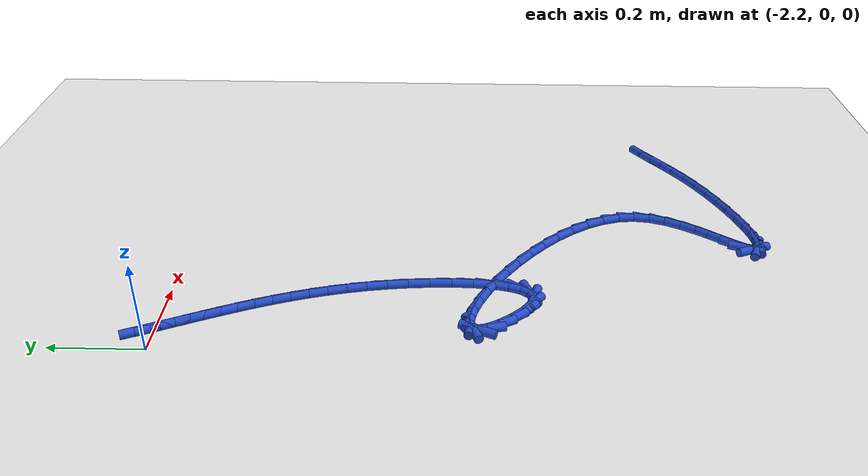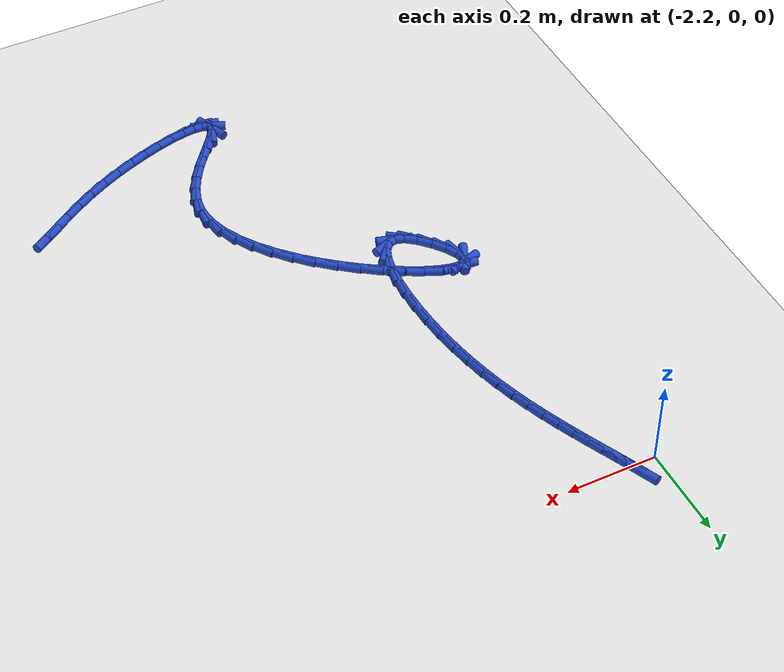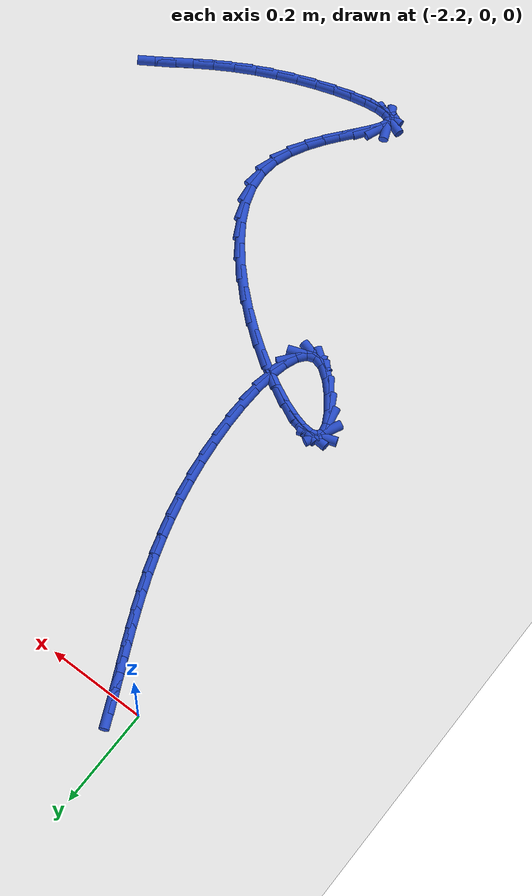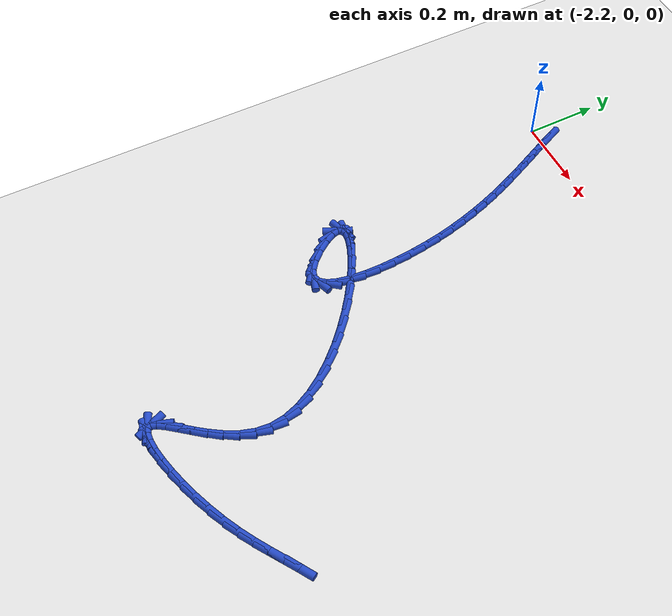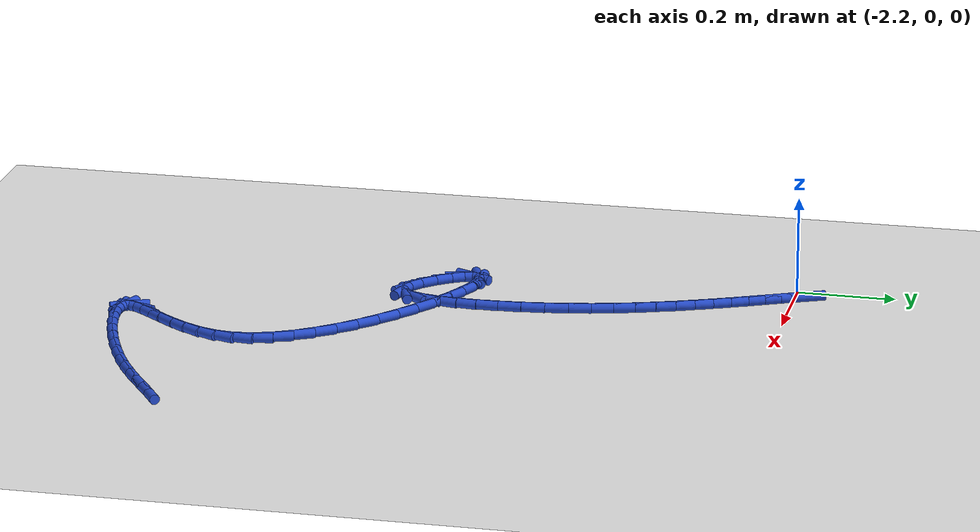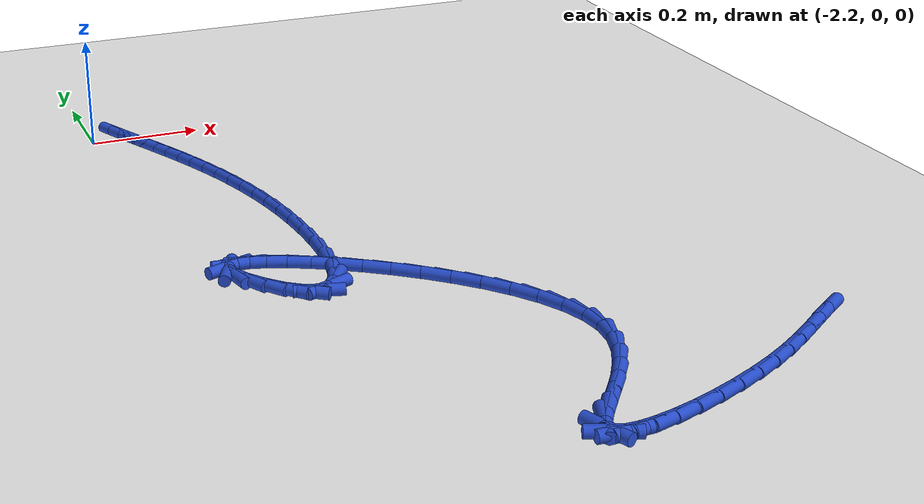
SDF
<sdf version="1.6">
 <world name="default">
  <model name="ground_plane">
   <static>1</static>
   <link name="link">
    <collision name="collision">
     <geometry><plane><normal>0 0 1</normal><size>100 100</size></plane></geometry>
     <surface><friction><ode><mu>100</mu><mu2>50</mu2></ode></friction></surface>
    </collision>
    <visual name="visual">
     <cast_shadows>0</cast_shadows>
     <geometry><plane><normal>0 0 1</normal><size>100 100</size></plane></geometry>
     <material>
      <script><uri>file://media/materials/scripts/gazebo.material</uri><name>Gazebo/WhiteGlow</name></script>
     </material>
    </visual>
   </link>
  </model>
  <model name="line">
   <link name="link_143">
    <pose>-2.152068193592259 0.02436269255250722 0.01 0 1.57 -1.1484810610256622</pose>
    <collision name="collision">
     <geometry><cylinder><radius>0.01</radius><length>0.08</length></cylinder></geometry>
    </collision>
    <visual name="visual">
     <material>
      <script><name>Gazebo/Blue</name><uri>file://media/materials/scripts/gazebo.material</uri></script>
     </material>
     <geometry><cylinder><radius>0.01</radius><length>0.08</length></cylinder></geometry>
    </visual>
   </link>
   <link name="link_144">
    <pose>-2.1398056084441 -0.002926768150948951 0.01 0 1.57 -1.136471778639956</pose>
    <collision name="collision">
     <geometry><cylinder><radius>0.01</radius><length>0.08</length></cylinder></geometry>
    </collision>
    <visual name="visual">
     <material>
      <script><name>Gazebo/Blue</name><uri>file://media/materials/scripts/gazebo.material</uri></script>
     </material>
     <geometry><cylinder><radius>0.01</radius><length>0.08</length></cylinder></geometry>
    </visual>
   </link>
   <link name="link_145">
    <pose>-2.1267307143251473 -0.03111358358671991 0.01 0 1.57 -1.1319063735678736</pose>
    <collision name="collision">
     <geometry><cylinder><radius>0.01</radius><length>0.08</length></cylinder></geometry>
    </collision>
    <visual name="visual">
     <material>
      <script><name>Gazebo/Blue</name><uri>file://media/materials/scripts/gazebo.material</uri></script>
     </material>
     <geometry><cylinder><radius>0.01</radius><length>0.08</length></cylinder></geometry>
    </visual>
   </link>
   <link name="link_146">
    <pose>-2.1130412014923126 -0.060275873741788416 0.01 0 1.57 -1.1340144063076438</pose>
    <collision name="collision">
     <geometry><cylinder><radius>0.01</radius><length>0.08</length></cylinder></geometry>
    </collision>
    <visual name="visual">
     <material>
      <script><name>Gazebo/Blue</name><uri>file://media/materials/scripts/gazebo.material</uri></script>
     </material>
     <geometry><cylinder><radius>0.01</radius><length>0.08</length></cylinder></geometry>
    </visual>
   </link>
   <link name="link_147">
    <pose>-2.0989347602025075 -0.09049175860313437 0.01 0 1.57 -1.1421410478172946</pose>
    <collision name="collision">
     <geometry><cylinder><radius>0.01</radius><length>0.08</length></cylinder></geometry>
    </collision>
    <visual name="visual">
     <material>
      <script><name>Gazebo/Blue</name><uri>file://media/materials/scripts/gazebo.material</uri></script>
     </material>
     <geometry><cylinder><radius>0.01</radius><length>0.08</length></cylinder></geometry>
    </visual>
   </link>
   <link name="link_148">
    <pose>-2.0846090807126436 -0.12183935815774045 0.01 0 1.57 -1.1557245886575047</pose>
    <collision name="collision">
     <geometry><cylinder><radius>0.01</radius><length>0.08</length></cylinder></geometry>
    </collision>
    <visual name="visual">
     <material>
      <script><name>Gazebo/Blue</name><uri>file://media/materials/scripts/gazebo.material</uri></script>
     </material>
     <geometry><cylinder><radius>0.01</radius><length>0.08</length></cylinder></geometry>
    </visual>
   </link>
   <link name="link_149">
    <pose>-2.070261853279632 -0.15439679239258847 0.01 0 1.57 -1.1742733917183918</pose>
    <collision name="collision">
     <geometry><cylinder><radius>0.01</radius><length>0.08</length></cylinder></geometry>
    </collision>
    <visual name="visual">
     <material>
      <script><name>Gazebo/Blue</name><uri>file://media/materials/scripts/gazebo.material</uri></script>
     </material>
     <geometry><cylinder><radius>0.01</radius><length>0.08</length></cylinder></geometry>
    </visual>
   </link>
   <link name="link_150">
    <pose>-2.0560907681603844 -0.18824218129466014 0.01 0 1.57 -1.197344345354905</pose>
    <collision name="collision">
     <geometry><cylinder><radius>0.01</radius><length>0.08</length></cylinder></geometry>
    </collision>
    <visual name="visual">
     <material>
      <script><name>Gazebo/Blue</name><uri>file://media/materials/scripts/gazebo.material</uri></script>
     </material>
     <geometry><cylinder><radius>0.01</radius><length>0.08</length></cylinder></geometry>
    </visual>
   </link>
   <link name="link_151">
    <pose>-2.042293515611812 -0.2234536448509373 0.01 0 1.57 -1.2245238226908646</pose>
    <collision name="collision">
     <geometry><cylinder><radius>0.01</radius><length>0.08</length></cylinder></geometry>
    </collision>
    <visual name="visual">
     <material>
      <script><name>Gazebo/Blue</name><uri>file://media/materials/scripts/gazebo.material</uri></script>
     </material>
     <geometry><cylinder><radius>0.01</radius><length>0.08</length></cylinder></geometry>
    </visual>
   </link>
   <link name="link_152">
    <pose>-2.0290677858908244 -0.26010930304840163 0.01 0 1.57 -1.2554117006270815</pose>
    <collision name="collision">
     <geometry><cylinder><radius>0.01</radius><length>0.08</length></cylinder></geometry>
    </collision>
    <visual name="visual">
     <material>
      <script><name>Gazebo/Blue</name><uri>file://media/materials/scripts/gazebo.material</uri></script>
     </material>
     <geometry><cylinder><radius>0.01</radius><length>0.08</length></cylinder></geometry>
    </visual>
   </link>
   <link name="link_153">
    <pose>-2.0166112692543354 -0.2982872758740349 0.01 0 1.57 -1.2896088287802219</pose>
    <collision name="collision">
     <geometry><cylinder><radius>0.01</radius><length>0.08</length></cylinder></geometry>
    </collision>
    <visual name="visual">
     <material>
      <script><name>Gazebo/Blue</name><uri>file://media/materials/scripts/gazebo.material</uri></script>
     </material>
     <geometry><cylinder><radius>0.01</radius><length>0.08</length></cylinder></geometry>
    </visual>
   </link>
   <link name="link_154">
    <pose>-2.005121655959255 -0.33806568331481895 0.01 0 1.57 -1.3267082720146268</pose>
    <collision name="collision">
     <geometry><cylinder><radius>0.01</radius><length>0.08</length></cylinder></geometry>
    </collision>
    <visual name="visual">
     <material>
      <script><name>Gazebo/Blue</name><uri>file://media/materials/scripts/gazebo.material</uri></script>
     </material>
     <geometry><cylinder><radius>0.01</radius><length>0.08</length></cylinder></geometry>
    </visual>
   </link>
   <link name="link_155">
    <pose>-1.9947966362624951 -0.37952264535773694 0.01 0 1.57 -1.3662905635150218</pose>
    <collision name="collision">
     <geometry><cylinder><radius>0.01</radius><length>0.08</length></cylinder></geometry>
    </collision>
    <visual name="visual">
     <material>
      <script><name>Gazebo/Blue</name><uri>file://media/materials/scripts/gazebo.material</uri></script>
     </material>
     <geometry><cylinder><radius>0.01</radius><length>0.08</length></cylinder></geometry>
    </visual>
   </link>
   <link name="link_156">
    <pose>-1.9858339004209666 -0.4227362819897678 0.01 0 1.57 -1.4079230360385369</pose>
    <collision name="collision">
     <geometry><cylinder><radius>0.01</radius><length>0.08</length></cylinder></geometry>
    </collision>
    <visual name="visual">
     <material>
      <script><name>Gazebo/Blue</name><uri>file://media/materials/scripts/gazebo.material</uri></script>
     </material>
     <geometry><cylinder><radius>0.01</radius><length>0.08</length></cylinder></geometry>
    </visual>
   </link>
   <link name="link_157">
    <pose>-1.9784311386915816 -0.4677847131978949 0.01 0 1.57 -1.4508976898528412</pose>
    <collision name="collision">
     <geometry><cylinder><radius>0.01</radius><length>0.08</length></cylinder></geometry>
    </collision>
    <visual name="visual">
     <material>
      <script><name>Gazebo/Blue</name><uri>file://media/materials/scripts/gazebo.material</uri></script>
     </material>
     <geometry><cylinder><radius>0.01</radius><length>0.08</length></cylinder></geometry>
    </visual>
   </link>
   <link name="link_158">
    <pose>-1.9727901102471401 -0.5146073580040293 0.01 0 1.57 -1.494130232786527</pose>
    <collision name="collision">
     <geometry><cylinder><radius>0.01</radius><length>0.08</length></cylinder></geometry>
    </collision>
    <visual name="visual">
     <material>
      <script><name>Gazebo/Blue</name><uri>file://media/materials/scripts/gazebo.material</uri></script>
     </material>
     <geometry><cylinder><radius>0.01</radius><length>0.08</length></cylinder></geometry>
    </visual>
   </link>
   <link name="link_159">
    <pose>-1.9691439970525064 -0.5620724971458396 0.01 0 1.57 -1.540610354270172</pose>
    <collision name="collision">
     <geometry><cylinder><radius>0.01</radius><length>0.08</length></cylinder></geometry>
    </collision>
    <visual name="visual">
     <material>
      <script><name>Gazebo/Blue</name><uri>file://media/materials/scripts/gazebo.material</uri></script>
     </material>
     <geometry><cylinder><radius>0.01</radius><length>0.08</length></cylinder></geometry>
    </visual>
   </link>
   <link name="link_160">
    <pose>-1.9677406114310358 -0.608549692562922 0.01 0 1.57 1.5460103826400278</pose>
    <collision name="collision">
     <geometry><cylinder><radius>0.01</radius><length>0.08</length></cylinder></geometry>
    </collision>
    <visual name="visual">
     <material>
      <script><name>Gazebo/Blue</name><uri>file://media/materials/scripts/gazebo.material</uri></script>
     </material>
     <geometry><cylinder><radius>0.01</radius><length>0.08</length></cylinder></geometry>
    </visual>
   </link>
   <link name="link_161">
    <pose>-1.9688278472739495 -0.6524057257141858 0.01 0 1.57 1.4744893380924577</pose>
    <collision name="collision">
     <geometry><cylinder><radius>0.01</radius><length>0.08</length></cylinder></geometry>
    </collision>
    <visual name="visual">
     <material>
      <script><name>Gazebo/Blue</name><uri>file://media/materials/scripts/gazebo.material</uri></script>
     </material>
     <geometry><cylinder><radius>0.01</radius><length>0.08</length></cylinder></geometry>
    </visual>
   </link>
   <link name="link_162">
    <pose>-1.9726535984724702 -0.6920073780585411 0.01 0 1.57 1.371423665888606</pose>
    <collision name="collision">
     <geometry><cylinder><radius>0.01</radius><length>0.08</length></cylinder></geometry>
    </collision>
    <visual name="visual">
     <material>
      <script><name>Gazebo/Blue</name><uri>file://media/materials/scripts/gazebo.material</uri></script>
     </material>
     <geometry><cylinder><radius>0.01</radius><length>0.08</length></cylinder></geometry>
    </visual>
   </link>
   <link name="link_163">
    <pose>-1.9794657589178204 -0.7257214310548981 0.01 0 1.57 1.2045493107947702</pose>
    <collision name="collision">
     <geometry><cylinder><radius>0.01</radius><length>0.08</length></cylinder></geometry>
    </collision>
    <visual name="visual">
     <material>
      <script><name>Gazebo/Blue</name><uri>file://media/materials/scripts/gazebo.material</uri></script>
     </material>
     <geometry><cylinder><radius>0.01</radius><length>0.08</length></cylinder></geometry>
    </visual>
   </link>
   <link name="link_164">
    <pose>-1.9895122225012218 -0.751914666162167 0.01 0 1.57 0.8997413150564889</pose>
    <collision name="collision">
     <geometry><cylinder><radius>0.01</radius><length>0.08</length></cylinder></geometry>
    </collision>
    <visual name="visual">
     <material>
      <script><name>Gazebo/Blue</name><uri>file://media/materials/scripts/gazebo.material</uri></script>
     </material>
     <geometry><cylinder><radius>0.01</radius><length>0.08</length></cylinder></geometry>
    </visual>
   </link>
   <link name="link_165">
    <pose>-2.0030408831138966 -0.768953864839256 0.01 0 1.57 0.3475440067153012</pose>
    <collision name="collision">
     <geometry><cylinder><radius>0.01</radius><length>0.08</length></cylinder></geometry>
    </collision>
    <visual name="visual">
     <material>
      <script><name>Gazebo/Blue</name><uri>file://media/materials/scripts/gazebo.material</uri></script>
     </material>
     <geometry><cylinder><radius>0.01</radius><length>0.08</length></cylinder></geometry>
    </visual>
   </link>
   <link name="link_166">
    <pose>-2.0202996346470674 -0.7752058085450766 0.01 0 1.57 -0.28215153652158537</pose>
    <collision name="collision">
     <geometry><cylinder><radius>0.01</radius><length>0.08</length></cylinder></geometry>
    </collision>
    <visual name="visual">
     <material>
      <script><name>Gazebo/Blue</name><uri>file://media/materials/scripts/gazebo.material</uri></script>
     </material>
     <geometry><cylinder><radius>0.01</radius><length>0.08</length></cylinder></geometry>
    </visual>
   </link>
   <link name="link_167">
    <pose>-2.0415282656242995 -0.7690519423304794 0.01 0 1.57 -0.6405939681253027</pose>
    <collision name="collision">
     <geometry><cylinder><radius>0.01</radius><length>0.08</length></cylinder></geometry>
    </collision>
    <visual name="visual">
     <material>
      <script><name>Gazebo/Blue</name><uri>file://media/materials/scripts/gazebo.material</uri></script>
     </material>
     <geometry><cylinder><radius>0.01</radius><length>0.08</length></cylinder></geometry>
    </visual>
   </link>
   <link name="link_168">
    <pose>-2.065824456991859 -0.7509399222037635 0.01 0 1.57 -0.8114331679779516</pose>
    <collision name="collision">
     <geometry><cylinder><radius>0.01</radius><length>0.08</length></cylinder></geometry>
    </collision>
    <visual name="visual">
     <material>
      <script><name>Gazebo/Blue</name><uri>file://media/materials/scripts/gazebo.material</uri></script>
     </material>
     <geometry><cylinder><radius>0.01</radius><length>0.08</length></cylinder></geometry>
    </visual>
   </link>
   <link name="link_169">
    <pose>-2.0899751821434163 -0.7254977540452695 0.01 0 1.57 -0.9323268220437128</pose>
    <collision name="collision">
     <geometry><cylinder><radius>0.01</radius><length>0.08</length></cylinder></geometry>
    </collision>
    <visual name="visual">
     <material>
      <script><name>Gazebo/Blue</name><uri>file://media/materials/scripts/gazebo.material</uri></script>
     </material>
     <geometry><cylinder><radius>0.01</radius><length>0.08</length></cylinder></geometry>
    </visual>
   </link>
   <link name="link_170">
    <pose>-2.1104885372119813 -0.6978579664818967 0.01 0 1.57 -1.074288026625934</pose>
    <collision name="collision">
     <geometry><cylinder><radius>0.01</radius><length>0.08</length></cylinder></geometry>
    </collision>
    <visual name="visual">
     <material>
      <script><name>Gazebo/Blue</name><uri>file://media/materials/scripts/gazebo.material</uri></script>
     </material>
     <geometry><cylinder><radius>0.01</radius><length>0.08</length></cylinder></geometry>
    </visual>
   </link>
   <link name="link_171">
    <pose>-2.1238739953918864 -0.6731513984329291 0.01 0 1.57 -1.3604068473733237</pose>
    <collision name="collision">
     <geometry><cylinder><radius>0.01</radius><length>0.08</length></cylinder></geometry>
    </collision>
    <visual name="visual">
     <material>
      <script><name>Gazebo/Blue</name><uri>file://media/materials/scripts/gazebo.material</uri></script>
     </material>
     <geometry><cylinder><radius>0.01</radius><length>0.08</length></cylinder></geometry>
    </visual>
   </link>
   <link name="link_172">
    <pose>-2.1277074303928316 -0.6552003740557386 0.01 0 1.57 1.1321031458114932</pose>
    <collision name="collision">
     <geometry><cylinder><radius>0.01</radius><length>0.08</length></cylinder></geometry>
    </collision>
    <visual name="visual">
     <material>
      <script><name>Gazebo/Blue</name><uri>file://media/materials/scripts/gazebo.material</uri></script>
     </material>
     <geometry><cylinder><radius>0.01</radius><length>0.08</length></cylinder></geometry>
    </visual>
   </link>
   <link name="link_173">
    <pose>-2.122536928350799 -0.6441801976691988 0.01 0 1.57 0.33361401856884376</pose>
    <collision name="collision">
     <geometry><cylinder><radius>0.01</radius><length>0.08</length></cylinder></geometry>
    </collision>
    <visual name="visual">
     <material>
      <script><name>Gazebo/Blue</name><uri>file://media/materials/scripts/gazebo.material</uri></script>
     </material>
     <geometry><cylinder><radius>0.01</radius><length>0.08</length></cylinder></geometry>
    </visual>
   </link>
   <link name="link_174">
    <pose>-2.1094243204791003 -0.6396357884715274 0.01 0 1.57 -0.07370637355065916</pose>
    <collision name="collision">
     <geometry><cylinder><radius>0.01</radius><length>0.08</length></cylinder></geometry>
    </collision>
    <visual name="visual">
     <material>
      <script><name>Gazebo/Blue</name><uri>file://media/materials/scripts/gazebo.material</uri></script>
     </material>
     <geometry><cylinder><radius>0.01</radius><length>0.08</length></cylinder></geometry>
    </visual>
   </link>
   <link name="link_175">
    <pose>-2.0894314379910477 -0.6411120656609416 0.01 0 1.57 -0.2663396834013956</pose>
    <collision name="collision">
     <geometry><cylinder><radius>0.01</radius><length>0.08</length></cylinder></geometry>
    </collision>
    <visual name="visual">
     <material>
      <script><name>Gazebo/Blue</name><uri>file://media/materials/scripts/gazebo.material</uri></script>
     </material>
     <geometry><cylinder><radius>0.01</radius><length>0.08</length></cylinder></geometry>
    </visual>
   </link>
   <link name="link_176">
    <pose>-2.063620112099954 -0.6481539484356584 0.01 0 1.57 -0.37839602198512656</pose>
    <collision name="collision">
     <geometry><cylinder><radius>0.01</radius><length>0.08</length></cylinder></geometry>
    </collision>
    <visual name="visual">
     <material>
      <script><name>Gazebo/Blue</name><uri>file://media/materials/scripts/gazebo.material</uri></script>
     </material>
     <geometry><cylinder><radius>0.01</radius><length>0.08</length></cylinder></geometry>
    </visual>
   </link>
   <link name="link_177">
    <pose>-2.0330521740191303 -0.6603063559938953 0.01 0 1.57 -0.45606553193175303</pose>
    <collision name="collision">
     <geometry><cylinder><radius>0.01</radius><length>0.08</length></cylinder></geometry>
    </collision>
    <visual name="visual">
     <material>
      <script><name>Gazebo/Blue</name><uri>file://media/materials/scripts/gazebo.material</uri></script>
     </material>
     <geometry><cylinder><radius>0.01</radius><length>0.08</length></cylinder></geometry>
    </visual>
   </link>
   <link name="link_178">
    <pose>-1.99878945496189 -0.6771142075338695 0.01 0 1.57 -0.5176118813166023</pose>
    <collision name="collision">
     <geometry><cylinder><radius>0.01</radius><length>0.08</length></cylinder></geometry>
    </collision>
    <visual name="visual">
     <material>
      <script><name>Gazebo/Blue</name><uri>file://media/materials/scripts/gazebo.material</uri></script>
     </material>
     <geometry><cylinder><radius>0.01</radius><length>0.08</length></cylinder></geometry>
    </visual>
   </link>
   <link name="link_179">
    <pose>-1.9618937861415446 -0.6981224222537983 0.01 0 1.57 -0.5717944159689915</pose>
    <collision name="collision">
     <geometry><cylinder><radius>0.01</radius><length>0.08</length></cylinder></geometry>
    </collision>
    <visual name="visual">
     <material>
      <script><name>Gazebo/Blue</name><uri>file://media/materials/scripts/gazebo.material</uri></script>
     </material>
     <geometry><cylinder><radius>0.01</radius><length>0.08</length></cylinder></geometry>
    </visual>
   </link>
   <link name="link_180">
    <pose>-1.9234269987714068 -0.722875919351899 0.01 0 1.57 -0.623700661436744</pose>
    <collision name="collision">
     <geometry><cylinder><radius>0.01</radius><length>0.08</length></cylinder></geometry>
    </collision>
    <visual name="visual">
     <material>
      <script><name>Gazebo/Blue</name><uri>file://media/materials/scripts/gazebo.material</uri></script>
     </material>
     <geometry><cylinder><radius>0.01</radius><length>0.08</length></cylinder></geometry>
    </visual>
   </link>
   <link name="link_181">
    <pose>-1.8844509240647869 -0.7509196180263897 0.01 0 1.57 -0.6769586220280817</pose>
    <collision name="collision">
     <geometry><cylinder><radius>0.01</radius><length>0.08</length></cylinder></geometry>
    </collision>
    <visual name="visual">
     <material>
      <script><name>Gazebo/Blue</name><uri>file://media/materials/scripts/gazebo.material</uri></script>
     </material>
     <geometry><cylinder><radius>0.01</radius><length>0.08</length></cylinder></geometry>
    </visual>
   </link>
   <link name="link_182">
    <pose>-1.846027393235 -0.7817984374754862 0.01 0 1.57 -0.7347721728450111</pose>
    <collision name="collision">
     <geometry><cylinder><radius>0.01</radius><length>0.08</length></cylinder></geometry>
    </collision>
    <visual name="visual">
     <material>
      <script><name>Gazebo/Blue</name><uri>file://media/materials/scripts/gazebo.material</uri></script>
     </material>
     <geometry><cylinder><radius>0.01</radius><length>0.08</length></cylinder></geometry>
    </visual>
   </link>
   <link name="link_183">
    <pose>-1.8092182374953567 -0.8150572968974061 0.01 0 1.57 -0.8005573909274927</pose>
    <collision name="collision">
     <geometry><cylinder><radius>0.01</radius><length>0.08</length></cylinder></geometry>
    </collision>
    <visual name="visual">
     <material>
      <script><name>Gazebo/Blue</name><uri>file://media/materials/scripts/gazebo.material</uri></script>
     </material>
     <geometry><cylinder><radius>0.01</radius><length>0.08</length></cylinder></geometry>
    </visual>
   </link>
   <link name="link_184">
    <pose>-1.7750852880591705 -0.8502411154903675 0.01 0 1.57 -0.8784754193013753</pose>
    <collision name="collision">
     <geometry><cylinder><radius>0.01</radius><length>0.08</length></cylinder></geometry>
    </collision>
    <visual name="visual">
     <material>
      <script><name>Gazebo/Blue</name><uri>file://media/materials/scripts/gazebo.material</uri></script>
     </material>
     <geometry><cylinder><radius>0.01</radius><length>0.08</length></cylinder></geometry>
    </visual>
   </link>
   <link name="link_185">
    <pose>-1.7446903761397516 -0.8868948124525871 0.01 0 1.57 -0.9739743442436243</pose>
    <collision name="collision">
     <geometry><cylinder><radius>0.01</radius><length>0.08</length></cylinder></geometry>
    </collision>
    <visual name="visual">
     <material>
      <script><name>Gazebo/Blue</name><uri>file://media/materials/scripts/gazebo.material</uri></script>
     </material>
     <geometry><cylinder><radius>0.01</radius><length>0.08</length></cylinder></geometry>
    </visual>
   </link>
   <link name="link_186">
    <pose>-1.7190953329504137 -0.924563306982282 0.01 0 1.57 -1.0942740969152647</pose>
    <collision name="collision">
     <geometry><cylinder><radius>0.01</radius><length>0.08</length></cylinder></geometry>
    </collision>
    <visual name="visual">
     <material>
      <script><name>Gazebo/Blue</name><uri>file://media/materials/scripts/gazebo.material</uri></script>
     </material>
     <geometry><cylinder><radius>0.01</radius><length>0.08</length></cylinder></geometry>
    </visual>
   </link>
   <link name="link_187">
    <pose>-1.6993619897044687 -0.9627915182776701 0.01 0 1.57 -1.2482900394034113</pose>
    <collision name="collision">
     <geometry><cylinder><radius>0.01</radius><length>0.08</length></cylinder></geometry>
    </collision>
    <visual name="visual">
     <material>
      <script><name>Gazebo/Blue</name><uri>file://media/materials/scripts/gazebo.material</uri></script>
     </material>
     <geometry><cylinder><radius>0.01</radius><length>0.08</length></cylinder></geometry>
    </visual>
   </link>
   <link name="link_188">
    <pose>-1.6865521776152286 -1.0011243655369682 0.01 0 1.57 -1.4444548503341914</pose>
    <collision name="collision">
     <geometry><cylinder><radius>0.01</radius><length>0.08</length></cylinder></geometry>
    </collision>
    <visual name="visual">
     <material>
      <script><name>Gazebo/Blue</name><uri>file://media/materials/scripts/gazebo.material</uri></script>
     </material>
     <geometry><cylinder><radius>0.01</radius><length>0.08</length></cylinder></geometry>
    </visual>
   </link>
   <link name="link_189">
    <pose>-1.6817277278960057 -1.039106767958394 0.01 0 1.57 1.4628467976559112</pose>
    <collision name="collision">
     <geometry><cylinder><radius>0.01</radius><length>0.08</length></cylinder></geometry>
    </collision>
    <visual name="visual">
     <material>
      <script><name>Gazebo/Blue</name><uri>file://media/materials/scripts/gazebo.material</uri></script>
     </material>
     <geometry><cylinder><radius>0.01</radius><length>0.08</length></cylinder></geometry>
    </visual>
   </link>
   <link name="link_190">
    <pose>-1.6857566494554688 -1.0762839526140897 0.01 0 1.57 1.2529707790995646</pose>
    <collision name="collision">
     <geometry><cylinder><radius>0.01</radius><length>0.08</length></cylinder></geometry>
    </collision>
    <visual name="visual">
     <material>
      <script><name>Gazebo/Blue</name><uri>file://media/materials/scripts/gazebo.material</uri></script>
     </material>
     <geometry><cylinder><radius>0.01</radius><length>0.08</length></cylinder></geometry>
    </visual>
   </link>
   <link name="link_191">
    <pose>-1.6975736224478193 -1.1122042175411804 0.01 0 1.57 1.0996366516319818</pose>
    <collision name="collision">
     <geometry><cylinder><radius>0.01</radius><length>0.08</length></cylinder></geometry>
    </collision>
    <visual name="visual">
     <material>
      <script><name>Gazebo/Blue</name><uri>file://media/materials/scripts/gazebo.material</uri></script>
     </material>
     <geometry><cylinder><radius>0.01</radius><length>0.08</length></cylinder></geometry>
    </visual>
   </link>
   <link name="link_192">
    <pose>-1.715002810107151 -1.146417624759544 0.01 0 1.57 0.9940807605655458</pose>
    <collision name="collision">
     <geometry><cylinder><radius>0.01</radius><length>0.08</length></cylinder></geometry>
    </collision>
    <visual name="visual">
     <material>
      <script><name>Gazebo/Blue</name><uri>file://media/materials/scripts/gazebo.material</uri></script>
     </material>
     <geometry><cylinder><radius>0.01</radius><length>0.08</length></cylinder></geometry>
    </visual>
   </link>
   <link name="link_193">
    <pose>-1.7358551446485058 -1.1784742573056586 0.01 0 1.57 0.9273178638774192</pose>
    <collision name="collision">
     <geometry><cylinder><radius>0.01</radius><length>0.08</length></cylinder></geometry>
    </collision>
    <visual name="visual">
     <material>
      <script><name>Gazebo/Blue</name><uri>file://media/materials/scripts/gazebo.material</uri></script>
     </material>
     <geometry><cylinder><radius>0.01</radius><length>0.08</length></cylinder></geometry>
    </visual>
   </link>
   <link name="link_194">
    <pose>-1.7579415582869231 -1.2079241982160014 0.01 0 1.57 0.8956683247060131</pose>
    <collision name="collision">
     <geometry><cylinder><radius>0.01</radius><length>0.08</length></cylinder></geometry>
    </collision>
    <visual name="visual">
     <material>
      <script><name>Gazebo/Blue</name><uri>file://media/materials/scripts/gazebo.material</uri></script>
     </material>
     <geometry><cylinder><radius>0.01</radius><length>0.08</length></cylinder></geometry>
    </visual>
   </link>
   <link name="link_195">
    <pose>-1.7790729832374457 -1.2343175305270504 0.01 0 1.57 0.904695336429791</pose>
    <collision name="collision">
     <geometry><cylinder><radius>0.01</radius><length>0.08</length></cylinder></geometry>
    </collision>
    <visual name="visual">
     <material>
      <script><name>Gazebo/Blue</name><uri>file://media/materials/scripts/gazebo.material</uri></script>
     </material>
     <geometry><cylinder><radius>0.01</radius><length>0.08</length></cylinder></geometry>
    </visual>
   </link>
   <link name="link_196">
    <pose>-1.7970603517151127 -1.257204337275283 0.01 0 1.57 0.9815512788655977</pose>
    <collision name="collision">
     <geometry><cylinder><radius>0.01</radius><length>0.08</length></cylinder></geometry>
    </collision>
    <visual name="visual">
     <material>
      <script><name>Gazebo/Blue</name><uri>file://media/materials/scripts/gazebo.material</uri></script>
     </material>
     <geometry><cylinder><radius>0.01</radius><length>0.08</length></cylinder></geometry>
    </visual>
   </link>
   <link name="link_197">
    <pose>-1.809714595934966 -1.2761347014971762 0.01 0 1.57 1.231140520152046</pose>
    <collision name="collision">
     <geometry><cylinder><radius>0.01</radius><length>0.08</length></cylinder></geometry>
    </collision>
    <visual name="visual">
     <material>
      <script><name>Gazebo/Blue</name><uri>file://media/materials/scripts/gazebo.material</uri></script>
     </material>
     <geometry><cylinder><radius>0.01</radius><length>0.08</length></cylinder></geometry>
    </visual>
   </link>
   <link name="link_198">
    <pose>-1.814846648112047 -1.2906587062292083 0.01 0 1.57 -1.1714152113597758</pose>
    <collision name="collision">
     <geometry><cylinder><radius>0.01</radius><length>0.08</length></cylinder></geometry>
    </collision>
    <visual name="visual">
     <material>
      <script><name>Gazebo/Blue</name><uri>file://media/materials/scripts/gazebo.material</uri></script>
     </material>
     <geometry><cylinder><radius>0.01</radius><length>0.08</length></cylinder></geometry>
    </visual>
   </link>
   <link name="link_199">
    <pose>-1.8107213157499593 -1.3004328953834539 0.01 0 1.57 -0.3836251376634894</pose>
    <collision name="collision">
     <geometry><cylinder><radius>0.01</radius><length>0.08</length></cylinder></geometry>
    </collision>
    <visual name="visual">
     <material>
      <script><name>Gazebo/Blue</name><uri>file://media/materials/scripts/gazebo.material</uri></script>
     </material>
     <geometry><cylinder><radius>0.01</radius><length>0.08</length></cylinder></geometry>
    </visual>
   </link>
   <link name="link_200">
    <pose>-1.7978300559020195 -1.305636095240478 0.01 0 1.57 -0.04736442745471915</pose>
    <collision name="collision">
     <geometry><cylinder><radius>0.01</radius><length>0.08</length></cylinder></geometry>
    </collision>
    <visual name="visual">
     <material>
      <script><name>Gazebo/Blue</name><uri>file://media/materials/scripts/gazebo.material</uri></script>
     </material>
     <geometry><cylinder><radius>0.01</radius><length>0.08</length></cylinder></geometry>
    </visual>
   </link>
   <link name="link_201">
    <pose>-1.7773460409307225 -1.30660703505541 0.01 0 1.57 0.1082068470600321</pose>
    <collision name="collision">
     <geometry><cylinder><radius>0.01</radius><length>0.08</length></cylinder></geometry>
    </collision>
    <visual name="visual">
     <material>
      <script><name>Gazebo/Blue</name><uri>file://media/materials/scripts/gazebo.material</uri></script>
     </material>
     <geometry><cylinder><radius>0.01</radius><length>0.08</length></cylinder></geometry>
    </visual>
   </link>
   <link name="link_202">
    <pose>-1.7504426183597275 -1.303684485169142 0.01 0 1.57 0.19881199804514055</pose>
    <collision name="collision">
     <geometry><cylinder><radius>0.01</radius><length>0.08</length></cylinder></geometry>
    </collision>
    <visual name="visual">
     <material>
      <script><name>Gazebo/Blue</name><uri>file://media/materials/scripts/gazebo.material</uri></script>
     </material>
     <geometry><cylinder><radius>0.01</radius><length>0.08</length></cylinder></geometry>
    </visual>
   </link>
   <link name="link_203">
    <pose>-1.7182931357126934 -1.2972072159225625 0.01 0 1.57 0.2614776502678954</pose>
    <collision name="collision">
     <geometry><cylinder><radius>0.01</radius><length>0.08</length></cylinder></geometry>
    </collision>
    <visual name="visual">
     <material>
      <script><name>Gazebo/Blue</name><uri>file://media/materials/scripts/gazebo.material</uri></script>
     </material>
     <geometry><cylinder><radius>0.01</radius><length>0.08</length></cylinder></geometry>
    </visual>
   </link>
   <link name="link_204">
    <pose>-1.6820709405132783 -1.2875139976565624 0.01 0 1.57 0.3108965645806319</pose>
    <collision name="collision">
     <geometry><cylinder><radius>0.01</radius><length>0.08</length></cylinder></geometry>
    </collision>
    <visual name="visual">
     <material>
      <script><name>Gazebo/Blue</name><uri>file://media/materials/scripts/gazebo.material</uri></script>
     </material>
     <geometry><cylinder><radius>0.01</radius><length>0.08</length></cylinder></geometry>
    </visual>
   </link>
   <link name="link_205">
    <pose>-1.642949380285142 -1.2749436007120312 0.01 0 1.57 0.3542765878845165</pose>
    <collision name="collision">
     <geometry><cylinder><radius>0.01</radius><length>0.08</length></cylinder></geometry>
    </collision>
    <visual name="visual">
     <material>
      <script><name>Gazebo/Blue</name><uri>file://media/materials/scripts/gazebo.material</uri></script>
     </material>
     <geometry><cylinder><radius>0.01</radius><length>0.08</length></cylinder></geometry>
    </visual>
   </link>
   <link name="link_206">
    <pose>-1.602101802551943 -1.259834795429859 0.01 0 1.57 0.39599123320235347</pose>
    <collision name="collision">
     <geometry><cylinder><radius>0.01</radius><length>0.08</length></cylinder></geometry>
    </collision>
    <visual name="visual">
     <material>
      <script><name>Gazebo/Blue</name><uri>file://media/materials/scripts/gazebo.material</uri></script>
     </material>
     <geometry><cylinder><radius>0.01</radius><length>0.08</length></cylinder></geometry>
    </visual>
   </link>
   <link name="link_207">
    <pose>-1.5607015548373402 -1.2425263521509364 0.01 0 1.57 0.4394193930834028</pose>
    <collision name="collision">
     <geometry><cylinder><radius>0.01</radius><length>0.08</length></cylinder></geometry>
    </collision>
    <visual name="visual">
     <material>
      <script><name>Gazebo/Blue</name><uri>file://media/materials/scripts/gazebo.material</uri></script>
     </material>
     <geometry><cylinder><radius>0.01</radius><length>0.08</length></cylinder></geometry>
    </visual>
   </link>
   <link name="link_208">
    <pose>-1.5199219846649914 -1.223357041216152 0.01 0 1.57 0.4879033247853791</pose>
    <collision name="collision">
     <geometry><cylinder><radius>0.01</radius><length>0.08</length></cylinder></geometry>
    </collision>
    <visual name="visual">
     <material>
      <script><name>Gazebo/Blue</name><uri>file://media/materials/scripts/gazebo.material</uri></script>
     </material>
     <geometry><cylinder><radius>0.01</radius><length>0.08</length></cylinder></geometry>
    </visual>
   </link>
   <link name="link_209">
    <pose>-1.4809341763026387 -1.2026662906267978 0.01 0 1.57 0.5380229773932261</pose>
    <collision name="collision">
     <geometry><cylinder><radius>0.01</radius><length>0.08</length></cylinder></geometry>
    </collision>
    <visual name="visual">
     <material>
      <script><name>Gazebo/Blue</name><uri>file://media/materials/scripts/gazebo.material</uri></script>
     </material>
     <geometry><cylinder><radius>0.01</radius><length>0.08</length></cylinder></geometry>
    </visual>
   </link>
   <link name="link_210">
    <pose>-1.4444865607604214 -1.1809163436203842 0.01 0 1.57 0.5749636944647292</pose>
    <collision name="collision">
     <geometry><cylinder><radius>0.01</radius><length>0.08</length></cylinder></geometry>
    </collision>
    <visual name="visual">
     <material>
      <script><name>Gazebo/Blue</name><uri>file://media/materials/scripts/gazebo.material</uri></script>
     </material>
     <geometry><cylinder><radius>0.01</radius><length>0.08</length></cylinder></geometry>
    </visual>
   </link>
   <link name="link_211">
    <pose>-1.4104112076024127 -1.1588357211583984 0.01 0 1.57 0.5949084321001707</pose>
    <collision name="collision">
     <geometry><cylinder><radius>0.01</radius><length>0.08</length></cylinder></geometry>
    </collision>
    <visual name="visual">
     <material>
      <script><name>Gazebo/Blue</name><uri>file://media/materials/scripts/gazebo.material</uri></script>
     </material>
     <geometry><cylinder><radius>0.01</radius><length>0.08</length></cylinder></geometry>
    </visual>
   </link>
   <link name="link_212">
    <pose>-1.3784202221178918 -1.1371878036065364 0.01 0 1.57 0.595352781849375</pose>
    <collision name="collision">
     <geometry><cylinder><radius>0.01</radius><length>0.08</length></cylinder></geometry>
    </collision>
    <visual name="visual">
     <material>
      <script><name>Gazebo/Blue</name><uri>file://media/materials/scripts/gazebo.material</uri></script>
     </material>
     <geometry><cylinder><radius>0.01</radius><length>0.08</length></cylinder></geometry>
    </visual>
   </link>
   <link name="link_213">
    <pose>-1.3482257095961367 -1.1167359713304943 0.01 0 1.57 0.572604522985993</pose>
    <collision name="collision">
     <geometry><cylinder><radius>0.01</radius><length>0.08</length></cylinder></geometry>
    </collision>
    <visual name="visual">
     <material>
      <script><name>Gazebo/Blue</name><uri>file://media/materials/scripts/gazebo.material</uri></script>
     </material>
     <geometry><cylinder><radius>0.01</radius><length>0.08</length></cylinder></geometry>
    </visual>
   </link>
  </model>
 </world>
</sdf>
